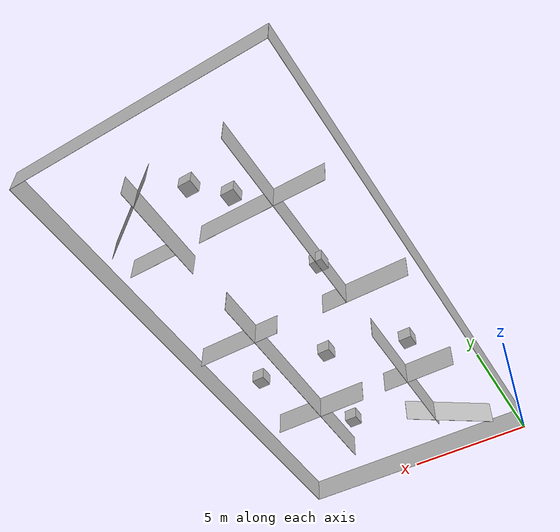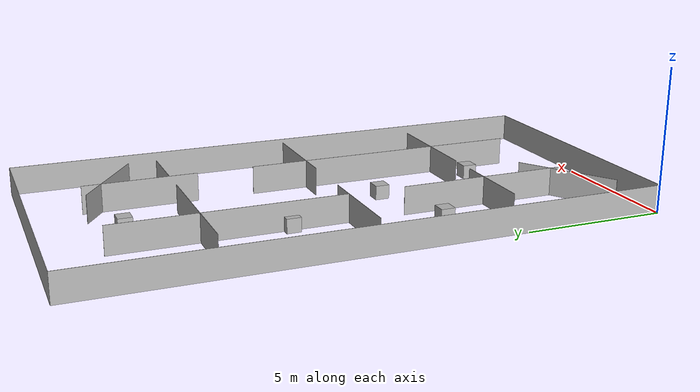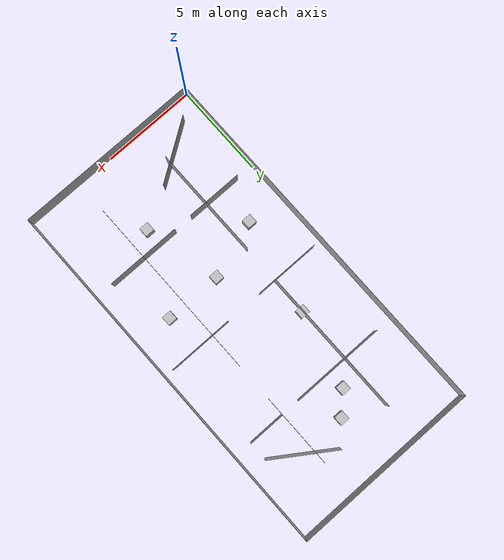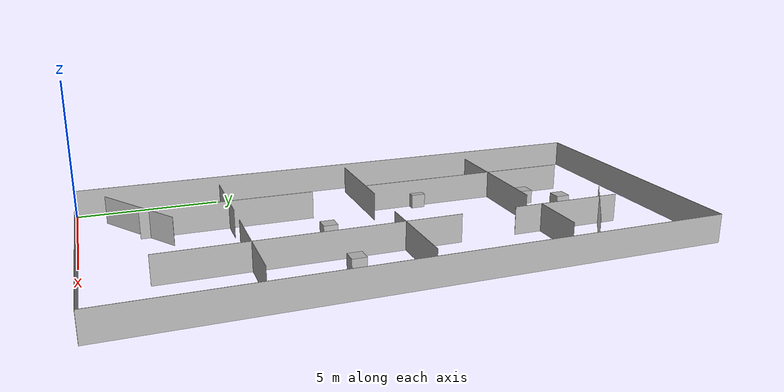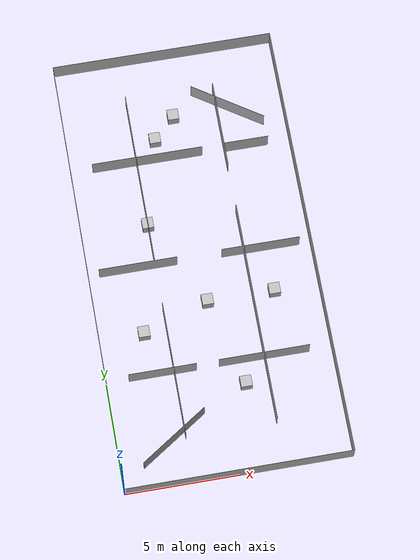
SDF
<sdf version="1.5">
  <model name="maze_map">
    <static>true</static>
    <link name="maze_link">
      <!-- ===================== BOUNDARY WALLS ===================== -->
      <!-- Left Boundary -->
      <collision name="wall_left_collision">
        <pose>0 10 0.5 0 0 0</pose>
        <geometry>
          <box>
            <size>0.01 20 1.0</size>
          </box>
        </geometry>
      </collision>
      <visual name="wall_left_visual">
        <pose>0 10 0.5 0 0 0</pose>
        <geometry>
          <box>
            <size>0.01 20 1.0</size>
          </box>
        </geometry>
      </visual>

      <!-- Right Boundary -->
      <collision name="wall_right_collision">
        <pose>10 10 0.5 0 0 0</pose>
        <geometry>
          <box>
            <size>0.01 20 1.0</size>
          </box>
        </geometry>
      </collision>
      <visual name="wall_right_visual">
        <pose>10 10 0.5 0 0 0</pose>
        <geometry>
          <box>
            <size>0.01 20 1.0</size>
          </box>
        </geometry>
      </visual>

      <!-- Bottom Boundary -->
      <collision name="wall_bottom_collision">
        <pose>5 0 0.5 0 0 0</pose>
        <geometry>
          <box>
            <size>10 0.01 1.0</size>
          </box>
        </geometry>
      </collision>
      <visual name="wall_bottom_visual">
        <pose>5 0 0.5 0 0 0</pose>
        <geometry>
          <box>
            <size>10 0.01 1.0</size>
          </box>
        </geometry>
      </visual>

      <!-- Top Boundary -->
      <collision name="wall_top_collision">
        <pose>5 20 0.5 0 0 0</pose>
        <geometry>
          <box>
            <size>10 0.01 1.0</size>
          </box>
        </geometry>
      </collision>
      <visual name="wall_top_visual">
        <pose>5 20 0.5 0 0 0</pose>
        <geometry>
          <box>
            <size>10 0.01 1.0</size>
          </box>
        </geometry>
      </visual>

      <!-- ===================== INTERNAL VERTICAL WALLS ===================== -->
      <!-- Vertical Wall at x=3 with a gap between y=8 and y=10 -->
      <!-- Lower segment: from y=2 to y=8 -->
      <collision name="vwall_x3_lower_collision">
        <pose>3 5 0.5 0 0 0</pose>
        <geometry>
          <box>
            <size>0.01 6 1.0</size>
          </box>
        </geometry>
      </collision>
      <visual name="vwall_x3_lower_visual">
        <pose>3 5 0.5 0 0 0</pose>
        <geometry>
          <box>
            <size>0.01 6 1.0</size>
          </box>
        </geometry>
      </visual>

      <!-- Upper segment: from y=10 to y=18 -->
      <collision name="vwall_x3_upper_collision">
        <pose>3 14 0.5 0 0 0</pose>
        <geometry>
          <box>
            <size>0.01 8 1.0</size>
          </box>
        </geometry>
      </collision>
      <visual name="vwall_x3_upper_visual">
        <pose>3 14 0.5 0 0 0</pose>
        <geometry>
          <box>
            <size>0.01 8 1.0</size>
          </box>
        </geometry>
      </visual>

      <!-- Vertical Wall at x=7 with a gap between y=12 and y=14 -->
      <!-- Lower segment: from y=2 to y=12 -->
      <collision name="vwall_x7_lower_collision">
        <pose>7 7 0.5 0 0 0</pose>
        <geometry>
          <box>
            <size>0.01 10 1.0</size>
          </box>
        </geometry>
      </collision>
      <visual name="vwall_x7_lower_visual">
        <pose>7 7 0.5 0 0 0</pose>
        <geometry>
          <box>
            <size>0.01 10 1.0</size>
          </box>
        </geometry>
      </visual>

      <!-- Upper segment: from y=14 to y=18 -->
      <collision name="vwall_x7_upper_collision">
        <pose>7 16 0.5 0 0 0</pose>
        <geometry>
          <box>
            <size>0.01 4 1.0</size>
          </box>
        </geometry>
      </collision>
      <visual name="vwall_x7_upper_visual">
        <pose>7 16 0.5 0 0 0</pose>
        <geometry>
          <box>
            <size>0.01 4 1.0</size>
          </box>
        </geometry>
      </visual>

      <!-- ===================== INTERNAL HORIZONTAL WALLS ===================== -->
      <!-- Horizontal Wall at y=5 with a gap between x=4 and x=5 -->
      <!-- Left segment: from x=1 to x=4 -->
      <collision name="hwall_y5_left_collision">
        <pose>2.5 5 0.5 0 0 0</pose>
        <geometry>
          <box>
            <size>3 0.01 1.0</size>
          </box>
        </geometry>
      </collision>
      <visual name="hwall_y5_left_visual">
        <pose>2.5 5 0.5 0 0 0</pose>
        <geometry>
          <box>
            <size>3 0.01 1.0</size>
          </box>
        </geometry>
      </visual>

      <!-- Right segment: from x=5 to x=9 -->
      <collision name="hwall_y5_right_collision">
        <pose>7 5 0.5 0 0 0</pose>
        <geometry>
          <box>
            <size>4 0.01 1.0</size>
          </box>
        </geometry>
      </collision>
      <visual name="hwall_y5_right_visual">
        <pose>7 5 0.5 0 0 0</pose>
        <geometry>
          <box>
            <size>4 0.01 1.0</size>
          </box>
        </geometry>
      </visual>

      <!-- Horizontal Wall at y=15 with a gap between x=6 and x=7 -->
      <!-- Left segment: from x=1 to x=6 -->
      <collision name="hwall_y15_left_collision">
        <pose>3.5 15 0.5 0 0 0</pose>
        <geometry>
          <box>
            <size>5 0.01 1.0</size>
          </box>
        </geometry>
      </collision>
      <visual name="hwall_y15_left_visual">
        <pose>3.5 15 0.5 0 0 0</pose>
        <geometry>
          <box>
            <size>5 0.01 1.0</size>
          </box>
        </geometry>
      </visual>

      <!-- Right segment: from x=7 to x=9 -->
      <collision name="hwall_y15_right_collision">
        <pose>8 15 0.5 0 0 0</pose>
        <geometry>
          <box>
            <size>2 0.01 1.0</size>
          </box>
        </geometry>
      </collision>
      <visual name="hwall_y15_right_visual">
        <pose>8 15 0.5 0 0 0</pose>
        <geometry>
          <box>
            <size>2 0.01 1.0</size>
          </box>
        </geometry>
      </visual>

      <!-- Horizontal Wall at y=10 with two gaps -->
      <!-- Left segment: from x=0.5 to x=4 -->
      <collision name="hwall_y10_left_collision">
        <pose>2.25 10 0.5 0 0 0</pose>
        <geometry>
          <box>
            <size>3.5 0.01 1.0</size>
          </box>
        </geometry>
      </collision>
      <visual name="hwall_y10_left_visual">
        <pose>2.25 10 0.5 0 0 0</pose>
        <geometry>
          <box>
            <size>3.5 0.01 1.0</size>
          </box>
        </geometry>
      </visual>

      <!-- Right segment: from x=6 to x=9.5 -->
      <collision name="hwall_y10_right_collision">
        <pose>7.75 10 0.5 0 0 0</pose>
        <geometry>
          <box>
            <size>3.5 0.01 1.0</size>
          </box>
        </geometry>
      </collision>
      <visual name="hwall_y10_right_visual">
        <pose>7.75 10 0.5 0 0 0</pose>
        <geometry>
          <box>
            <size>3.5 0.01 1.0</size>
          </box>
        </geometry>
      </visual>

      <!-- ===================== DIAGONAL WALLS ===================== -->
      <!-- Diagonal Wall from (1,1) to (4,3) -->
      <collision name="diagonal_wall1_collision">
        <pose>2.5 2 0.5 0 0 0.588</pose>
        <geometry>
          <box>
            <size>3.61 0.01 1.0</size>
          </box>
        </geometry>
      </collision>
      <visual name="diagonal_wall1_visual">
        <pose>2.5 2 0.5 0 0 0.588</pose>
        <geometry>
          <box>
            <size>3.61 0.01 1.0</size>
          </box>
        </geometry>
      </visual>

      <!-- Diagonal Wall from (6,18) to (9,16) -->
      <collision name="diagonal_wall2_collision">
        <pose>7.5 17 0.5 0 0 -0.588</pose>
        <geometry>
          <box>
            <size>3.61 0.01 1.0</size>
          </box>
        </geometry>
      </collision>
      <visual name="diagonal_wall2_visual">
        <pose>7.5 17 0.5 0 0 -0.588</pose>
        <geometry>
          <box>
            <size>3.61 0.01 1.0</size>
          </box>
        </geometry>
      </visual>

      <!-- ===================== BOX OBSTACLES ===================== -->
      <!-- Box Obstacle 1 -->
      <collision name="box1_collision">
        <pose>2 7 0.25 0 0 0</pose>
        <geometry>
          <box>
            <size>0.5 0.5 0.5</size>
          </box>
        </geometry>
      </collision>
      <visual name="box1_visual">
        <pose>2 7 0.25 0 0 0</pose>
        <geometry>
          <box>
            <size>0.5 0.5 0.5</size>
          </box>
        </geometry>
      </visual>

      <!-- Box Obstacle 2 -->
      <collision name="box2_collision">
        <pose>8 8 0.25 0 0 0</pose>
        <geometry>
          <box>
            <size>0.5 0.5 0.5</size>
          </box>
        </geometry>
      </collision>
      <visual name="box2_visual">
        <pose>8 8 0.25 0 0 0</pose>
        <geometry>
          <box>
            <size>0.5 0.5 0.5</size>
          </box>
        </geometry>
      </visual>

      <!-- Box Obstacle 3 -->
      <collision name="box3_collision">
        <pose>4 16 0.25 0 0 0</pose>
        <geometry>
          <box>
            <size>0.5 0.5 0.5</size>
          </box>
        </geometry>
      </collision>
      <visual name="box3_visual">
        <pose>4 16 0.25 0 0 0</pose>
        <geometry>
          <box>
            <size>0.5 0.5 0.5</size>
          </box>
        </geometry>
      </visual>

      <!-- Box Obstacle 4 -->
      <collision name="box4_collision">
        <pose>6 4 0.25 0 0 0</pose>
        <geometry>
          <box>
            <size>0.5 0.5 0.5</size>
          </box>
        </geometry>
      </collision>
      <visual name="box4_visual">
        <pose>6 4 0.25 0 0 0</pose>
        <geometry>
          <box>
            <size>0.5 0.5 0.5</size>
          </box>
        </geometry>
      </visual>

      <!-- Box Obstacle 5 -->
      <collision name="box5_collision">
        <pose>3 12 0.25 0 0 0</pose>
        <geometry>
          <box>
            <size>0.5 0.5 0.5</size>
          </box>
        </geometry>
      </collision>
      <visual name="box5_visual">
        <pose>3 12 0.25 0 0 0</pose>
        <geometry>
          <box>
            <size>0.5 0.5 0.5</size>
          </box>
        </geometry>
      </visual>

      <!-- Box Obstacle 6 -->
      <collision name="box6_collision">
        <pose>5 8 0.25 0 0 0</pose>
        <geometry>
          <box>
            <size>0.5 0.5 0.5</size>
          </box>
        </geometry>
      </collision>
      <visual name="box6_visual">
        <pose>5 8 0.25 0 0 0</pose>
        <geometry>
          <box>
            <size>0.5 0.5 0.5</size>
          </box>
        </geometry>
      </visual>

      <!-- Box Obstacle 7 -->
      <collision name="box7_collision">
        <pose>5 17 0.25 0 0 0</pose>
        <geometry>
          <box>
            <size>0.5 0.5 0.5</size>
          </box>
        </geometry>
      </collision>
      <visual name="box7_visual">
        <pose>5 17 0.25 0 0 0</pose>
        <geometry>
          <box>
            <size>0.5 0.5 0.5</size>
          </box>
        </geometry>
      </visual>

    </link>
  </model>
</sdf>
